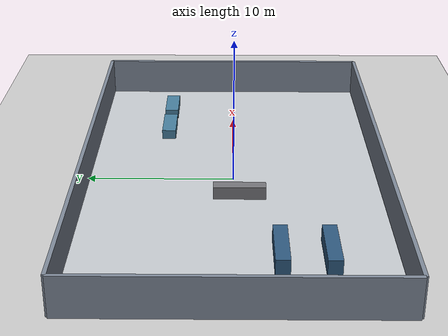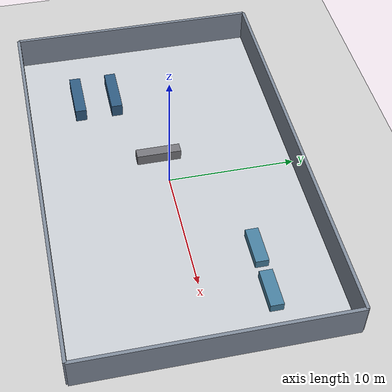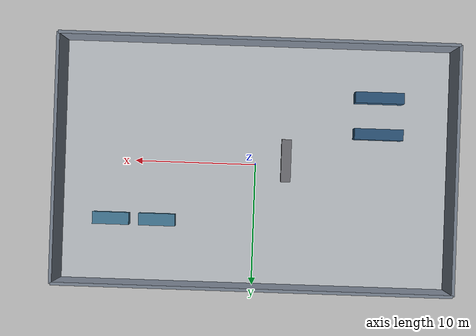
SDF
<?xml version="1.0"?>
<sdf version="1.6">
  <world name="dynamic_nav_airport">
    <include><uri>model://sun</uri></include>
    <include><uri>model://ground_plane</uri></include>
    <scene><ambient>0.62 0.64 0.68 1</ambient><background>0.86 0.89 0.93 1</background></scene>
    <physics type="ode"><max_step_size>0.0025</max_step_size><real_time_update_rate>400</real_time_update_rate></physics>

    <model name="airport_floor">
      <static>true</static>
      <link name="floor">
        <visual name="terminal_tile"><geometry><box><size>32 20 0.03</size></box></geometry><material><ambient>0.68 0.70 0.72 1</ambient><diffuse>0.78 0.80 0.82 1</diffuse></material></visual>
        <collision name="collision"><geometry><box><size>32 20 0.03</size></box></geometry></collision>
      </link>
    </model>

    <model name="terminal_shell">
      <static>true</static>
      <link name="walls">
        <visual name="north"><pose>0 10 1.35 0 0 0</pose><geometry><box><size>32 0.25 2.7</size></box></geometry><material><diffuse>0.50 0.54 0.60 1</diffuse></material></visual>
        <collision name="north_col"><pose>0 10 1.35 0 0 0</pose><geometry><box><size>32 0.25 2.7</size></box></geometry></collision>
        <visual name="south"><pose>0 -10 1.35 0 0 0</pose><geometry><box><size>32 0.25 2.7</size></box></geometry><material><diffuse>0.50 0.54 0.60 1</diffuse></material></visual>
        <collision name="south_col"><pose>0 -10 1.35 0 0 0</pose><geometry><box><size>32 0.25 2.7</size></box></geometry></collision>
        <visual name="east"><pose>16 0 1.35 0 0 0</pose><geometry><box><size>0.25 20 2.7</size></box></geometry><material><diffuse>0.50 0.54 0.60 1</diffuse></material></visual>
        <collision name="east_col"><pose>16 0 1.35 0 0 0</pose><geometry><box><size>0.25 20 2.7</size></box></geometry></collision>
        <visual name="west"><pose>-16 0 1.35 0 0 0</pose><geometry><box><size>0.25 20 2.7</size></box></geometry><material><diffuse>0.50 0.54 0.60 1</diffuse></material></visual>
        <collision name="west_col"><pose>-16 0 1.35 0 0 0</pose><geometry><box><size>0.25 20 2.7</size></box></geometry></collision>
      </link>
    </model>

    <model name="airport_fixtures">
      <static>true</static>
      <link name="fixtures">
        <visual name="checkin_a"><pose>-10 -5.8 0.55 0 0 0</pose><geometry><box><size>4.0 0.9 1.1</size></box></geometry><material><diffuse>0.18 0.35 0.50 1</diffuse></material></visual>
        <collision name="checkin_a_col"><pose>-10 -5.8 0.55 0 0 0</pose><geometry><box><size>4.0 0.9 1.1</size></box></geometry></collision>
        <visual name="checkin_b"><pose>-10 -2.8 0.55 0 0 0</pose><geometry><box><size>4.0 0.9 1.1</size></box></geometry><material><diffuse>0.18 0.35 0.50 1</diffuse></material></visual>
        <collision name="checkin_b_col"><pose>-10 -2.8 0.55 0 0 0</pose><geometry><box><size>4.0 0.9 1.1</size></box></geometry></collision>
        <visual name="security_a"><pose>-2.5 -0.4 0.45 0 0 0</pose><geometry><box><size>0.8 3.5 0.9</size></box></geometry><material><diffuse>0.46 0.46 0.48 1</diffuse></material></visual>
        <collision name="security_a_col"><pose>-2.5 -0.4 0.45 0 0 0</pose><geometry><box><size>0.8 3.5 0.9</size></box></geometry></collision>
        <visual name="gate_seats_a"><pose>8 4.8 0.35 0 0 0</pose><geometry><box><size>3.0 1.0 0.7</size></box></geometry><material><diffuse>0.28 0.50 0.62 1</diffuse></material></visual>
        <collision name="gate_seats_a_col"><pose>8 4.8 0.35 0 0 0</pose><geometry><box><size>3.0 1.0 0.7</size></box></geometry></collision>
        <visual name="gate_seats_b"><pose>11.8 4.8 0.35 0 0 0</pose><geometry><box><size>3.0 1.0 0.7</size></box></geometry><material><diffuse>0.28 0.50 0.62 1</diffuse></material></visual>
        <collision name="gate_seats_b_col"><pose>11.8 4.8 0.35 0 0 0</pose><geometry><box><size>3.0 1.0 0.7</size></box></geometry></collision>
      </link>
    </model>
  </world>
</sdf>
